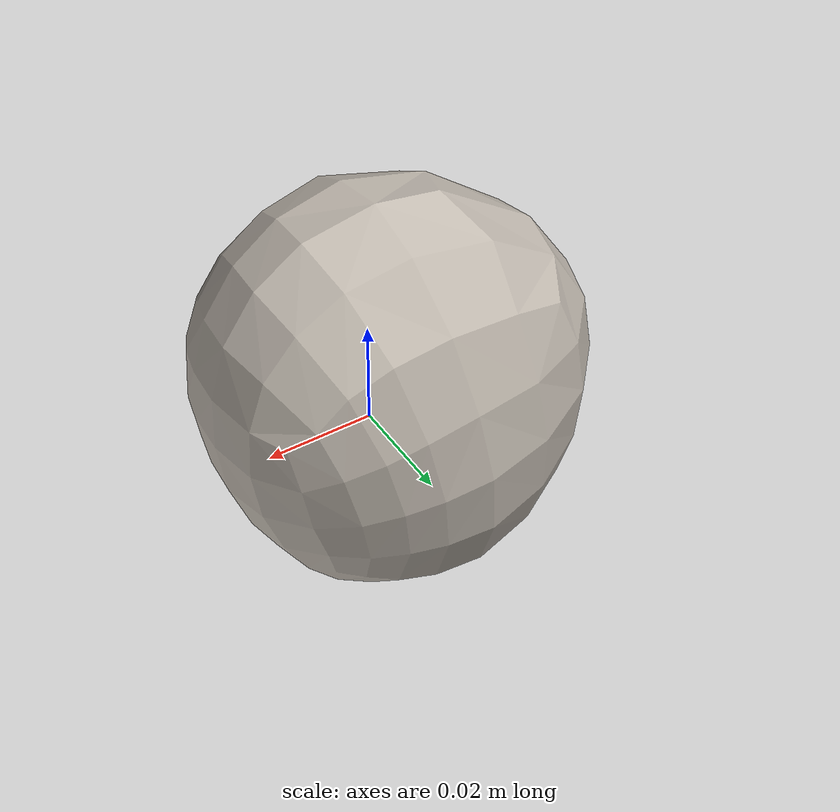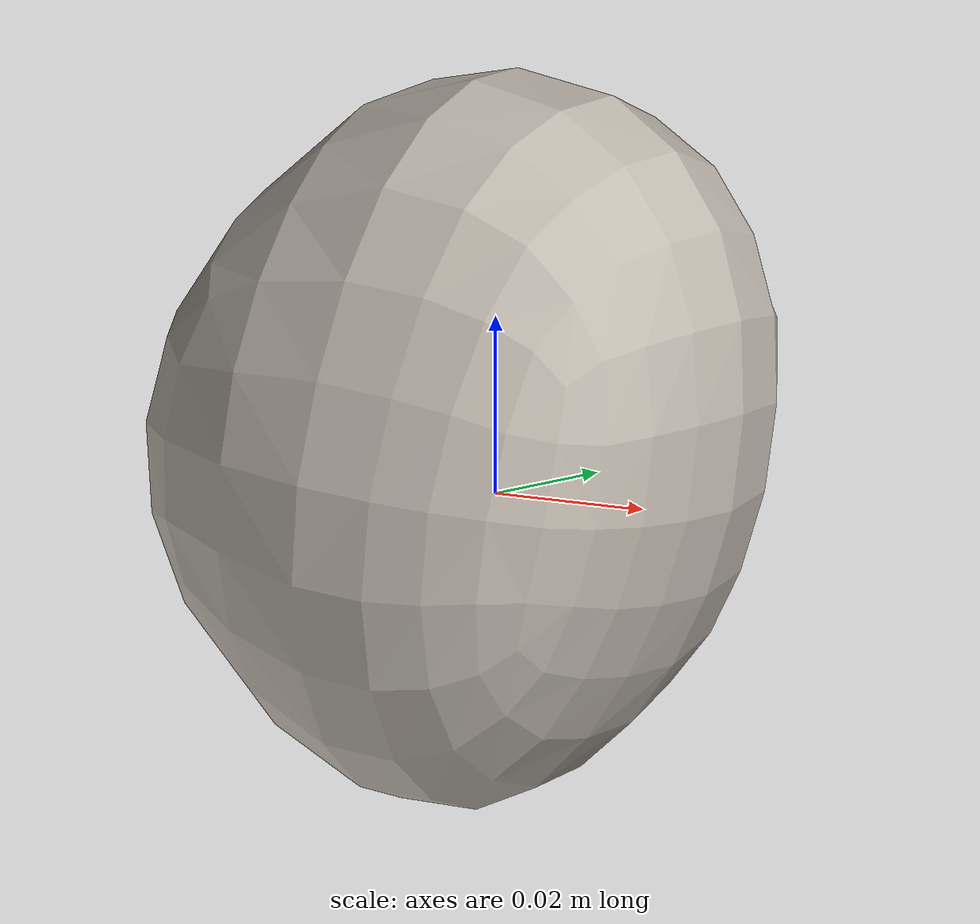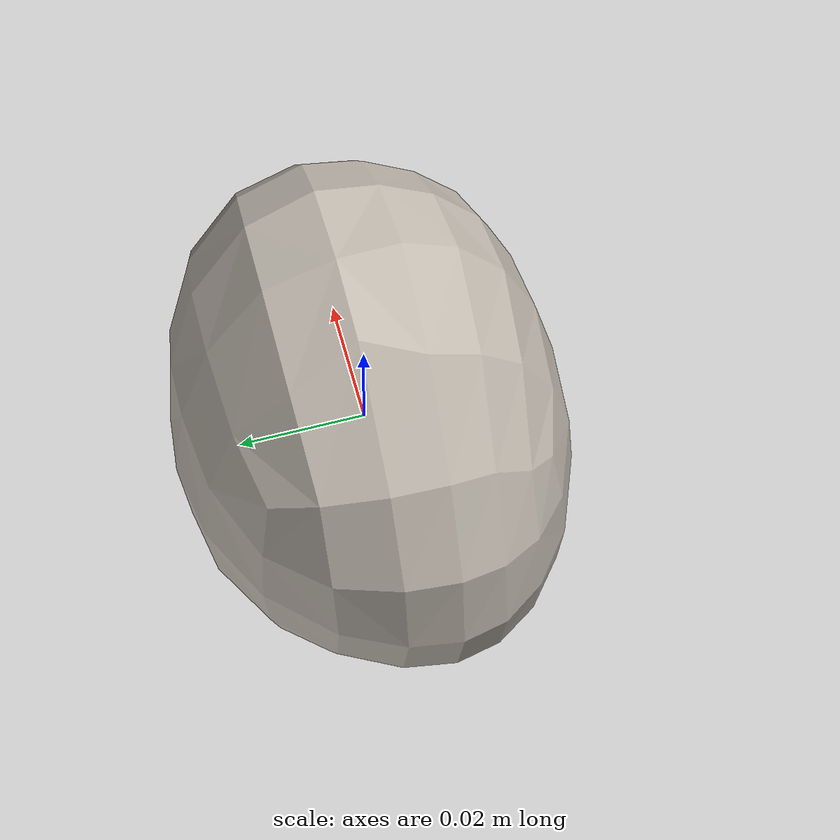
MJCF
<mujoco model="Potato_26">
  <compiler autolimits="true" boundmass="0.01" angle="radian"/>
  <default>
    <default class="/">
      <default class="__VISUAL_MJT__">
        <geom contype="0" conaffinity="0" group="0"/>
      </default>
      <default class="__STRUCTURAL_MJT__">
        <geom contype="8" conaffinity="15" group="4" friction="0.90000000000000002 0.90000000000000002 0.001" solref="0.025000000000000001 1" solimp="0.998 0.998 0.001"/>
      </default>
      <default class="__DYNAMIC_MJT__">
        <geom contype="1" conaffinity="15" group="4" friction="0.90000000000000002 0.90000000000000002 0.001" solref="0.025000000000000001 1" solimp="0.998 0.998 0.001"/>
      </default>
    </default>
  </default>
  <asset>
    <texture name="Potato3_Mat1" type="2d" file="Potato3_AlbedoTransparency.png"/>
    <material name="material_Potato3_Mat1" class="/" texture="Potato3_Mat1" specular="0.5" shininess="0.5" rgba="1 1 1 1"/>
    <mesh name="Potato_26_potato_c6" class="/" file="Potato_26_potato_c6/Potato_26_potato_c6.obj" scale="1 1 1"/>
  </asset>
  <worldbody>
    <body name="Potato_26">
      <joint name="Potato_26_free" class="/" type="free" pos="0 0 0" axis="0 0 1" stiffness="0" range="0 0" armature="0" damping="0.10000000000000001" frictionloss="0"/>
      <body name="Potato_26_potato_c6" pos="-0.0022399999821186064 0.00038000000000000002 0.0031100001020729542" quat="0.66977620124816895 0 0.74256306886672974 0">
        <geom name="Potato_26_potato_c6" class="__VISUAL_MJT__" type="mesh" material="material_Potato3_Mat1" shellinertia="true" mesh="Potato_26_potato_c6"/>
        <geom name="Potato_26_PrimitiveCollider_0" class="__DYNAMIC_MJT__" type="capsule" size="0.029241073876619339 0.0091211237013339996" rgba="0 1 0 1" pos="0.0073185176588594913 -0.00038397253956645727 0.0014942002017050982" quat="1.4751396609986736e-06 0.99999999999891198 0 0"/>
        <geom name="Potato_26_PrimitiveCollider_1" class="__DYNAMIC_MJT__" type="capsule" size="0.029596218839287758 0.012933021411299706" rgba="0 1 0 1" pos="-0.0048366272822022438 -0.00038397253956645727 0.0014942002017050982" quat="1.4751396609986736e-06 0.99999999999891198 0 0"/>
      </body>
    </body>
  </worldbody>
</mujoco>
